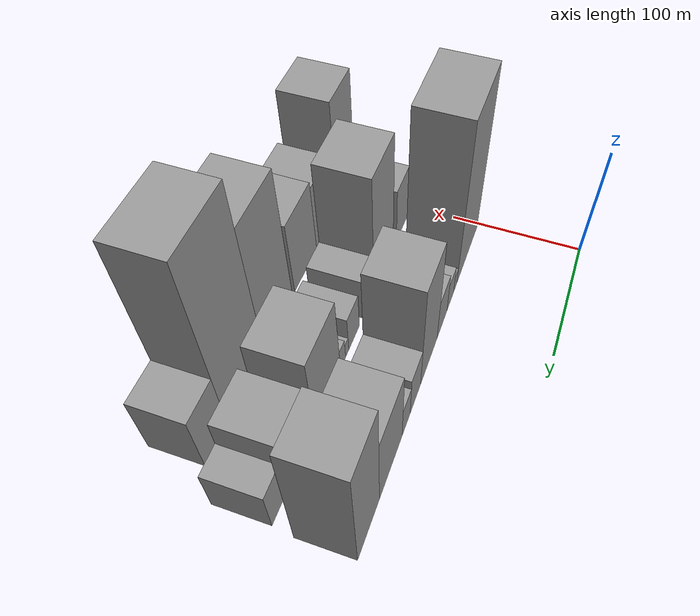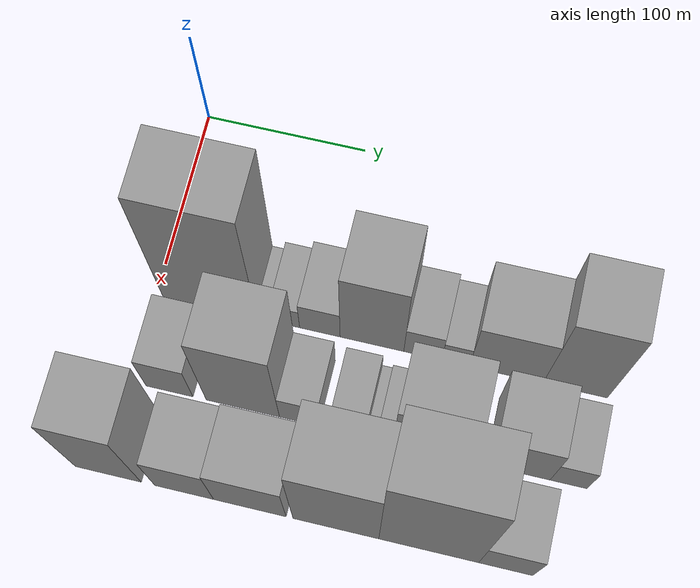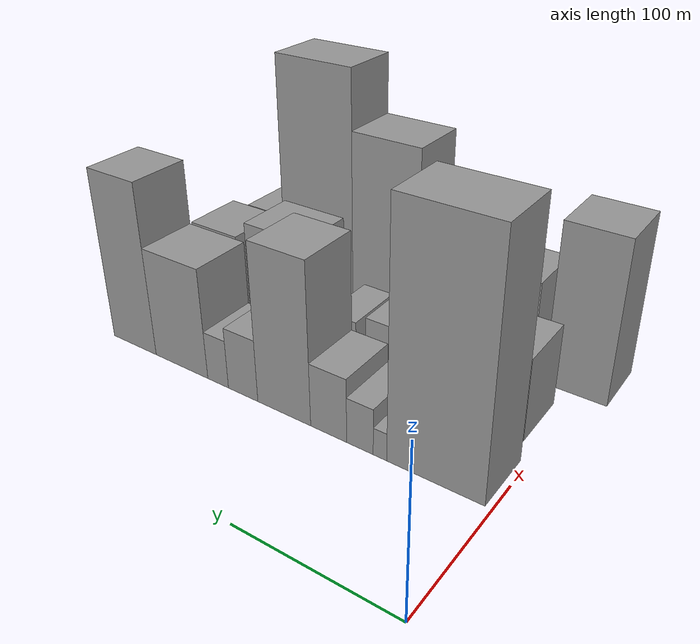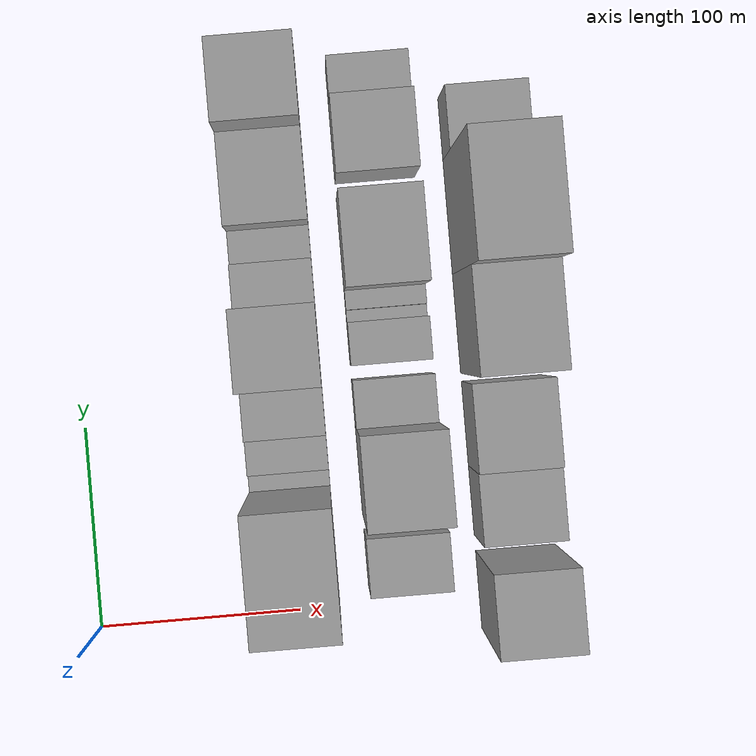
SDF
<sdf version="1.6">
 <world name="default">
  <model name="building_20">
   <static>1</static>
   <pose>100.0000 33.2290 0 0.000000 0.000000 0.000000</pose>
   <link name="link">
    <pose>0 0 78.00 0 0 0</pose>
    <collision name="collision"><geometry><box><size>40.0000 58.2275 156.0000</size></box></geometry></collision>
    <visual name="visual">
     <cast_shadows>0</cast_shadows>
     <geometry><box><size>40.0000 58.2275 156.0000</size></box></geometry>
     <material>
      <script>
       <uri>model://grey_wall/materials/scripts</uri>
       <uri>model://grey_wall/materials/textures</uri>
       <name>vrc/grey_wall</name>
      </script>
     </material>
    </visual>
   </link>
  </model>
  <model name="building_21">
   <static>1</static>
   <pose>100.0000 66.6488 0 0.000000 0.000000 0.000000</pose>
   <link name="link">
    <pose>0 0 9.00 0 0 0</pose>
    <collision name="collision"><geometry><box><size>40.0000 8.6122 18.0000</size></box></geometry></collision>
    <visual name="visual">
     <cast_shadows>0</cast_shadows>
     <geometry><box><size>40.0000 8.6122 18.0000</size></box></geometry>
     <material>
      <script>
       <uri>model://grey_wall/materials/scripts</uri>
       <uri>model://grey_wall/materials/textures</uri>
       <name>vrc/grey_wall</name>
      </script>
     </material>
    </visual>
   </link>
  </model>
  <model name="building_22">
   <static>1</static>
   <pose>100.0000 79.5975 0 0.000000 0.000000 0.000000</pose>
   <link name="link">
    <pose>0 0 15.00 0 0 0</pose>
    <collision name="collision"><geometry><box><size>40.0000 17.2851 30.0000</size></box></geometry></collision>
    <visual name="visual">
     <cast_shadows>0</cast_shadows>
     <geometry><box><size>40.0000 17.2851 30.0000</size></box></geometry>
     <material>
      <script>
       <uri>model://grey_wall/materials/scripts</uri>
       <uri>model://grey_wall/materials/textures</uri>
       <name>vrc/grey_wall</name>
      </script>
     </material>
    </visual>
   </link>
  </model>
  <model name="building_23">
   <static>1</static>
   <pose>100.0000 100.5448 0 0.000000 0.000000 0.000000</pose>
   <link name="link">
    <pose>0 0 21.00 0 0 0</pose>
    <collision name="collision"><geometry><box><size>40.0000 24.6096 42.0000</size></box></geometry></collision>
    <visual name="visual">
     <cast_shadows>0</cast_shadows>
     <geometry><box><size>40.0000 24.6096 42.0000</size></box></geometry>
     <material>
      <script>
       <uri>model://grey_wall/materials/scripts</uri>
       <uri>model://grey_wall/materials/textures</uri>
       <name>vrc/grey_wall</name>
      </script>
     </material>
    </visual>
   </link>
  </model>
  <model name="building_24">
   <static>1</static>
   <pose>100.0000 132.1193 0 0.000000 0.000000 0.000000</pose>
   <link name="link">
    <pose>0 0 52.50 0 0 0</pose>
    <collision name="collision"><geometry><box><size>40.0000 38.5394 105.0000</size></box></geometry></collision>
    <visual name="visual">
     <cast_shadows>0</cast_shadows>
     <geometry><box><size>40.0000 38.5394 105.0000</size></box></geometry>
     <material>
      <script>
       <uri>model://grey_wall/materials/scripts</uri>
       <uri>model://grey_wall/materials/textures</uri>
       <name>vrc/grey_wall</name>
      </script>
     </material>
    </visual>
   </link>
  </model>
  <model name="building_25">
   <static>1</static>
   <pose>100.0000 162.7643 0 0.000000 0.000000 0.000000</pose>
   <link name="link">
    <pose>0 0 21.00 0 0 0</pose>
    <collision name="collision"><geometry><box><size>40.0000 22.7505 42.0000</size></box></geometry></collision>
    <visual name="visual">
     <cast_shadows>0</cast_shadows>
     <geometry><box><size>40.0000 22.7505 42.0000</size></box></geometry>
     <material>
      <script>
       <uri>model://grey_wall/materials/scripts</uri>
       <uri>model://grey_wall/materials/textures</uri>
       <name>vrc/grey_wall</name>
      </script>
     </material>
    </visual>
   </link>
  </model>
  <model name="building_26">
   <static>1</static>
   <pose>100.0000 182.4364 0 0.000000 0.000000 0.000000</pose>
   <link name="link">
    <pose>0 0 16.50 0 0 0</pose>
    <collision name="collision"><geometry><box><size>40.0000 16.5937 33.0000</size></box></geometry></collision>
    <visual name="visual">
     <cast_shadows>0</cast_shadows>
     <geometry><box><size>40.0000 16.5937 33.0000</size></box></geometry>
     <material>
      <script>
       <uri>model://grey_wall/materials/scripts</uri>
       <uri>model://grey_wall/materials/textures</uri>
       <name>vrc/grey_wall</name>
      </script>
     </material>
    </visual>
   </link>
  </model>
  <model name="building_27">
   <static>1</static>
   <pose>100.0000 212.7019 0 0.000000 0.000000 0.000000</pose>
   <link name="link">
    <pose>0 0 37.50 0 0 0</pose>
    <collision name="collision"><geometry><box><size>40.0000 43.9373 75.0000</size></box></geometry></collision>
    <visual name="visual">
     <cast_shadows>0</cast_shadows>
     <geometry><box><size>40.0000 43.9373 75.0000</size></box></geometry>
     <material>
      <script>
       <uri>model://grey_wall/materials/scripts</uri>
       <uri>model://grey_wall/materials/textures</uri>
       <name>vrc/grey_wall</name>
      </script>
     </material>
    </visual>
   </link>
  </model>
  <model name="building_28">
   <static>1</static>
   <pose>100.0000 253.8108 0 0.000000 0.000000 0.000000</pose>
   <link name="link">
    <pose>0 0 58.50 0 0 0</pose>
    <collision name="collision"><geometry><box><size>40.0000 38.2804 117.0000</size></box></geometry></collision>
    <visual name="visual">
     <cast_shadows>0</cast_shadows>
     <geometry><box><size>40.0000 38.2804 117.0000</size></box></geometry>
     <material>
      <script>
       <uri>model://grey_wall/materials/scripts</uri>
       <uri>model://grey_wall/materials/textures</uri>
       <name>vrc/grey_wall</name>
      </script>
     </material>
    </visual>
   </link>
  </model>
  <model name="building_52">
   <static>1</static>
   <pose>155.0000 23.7741 0 0.000000 0.000000 0.000000</pose>
   <link name="link">
    <pose>0 0 27.00 0 0 0</pose>
    <collision name="collision"><geometry><box><size>40.0000 28.3925 54.0000</size></box></geometry></collision>
    <visual name="visual">
     <cast_shadows>0</cast_shadows>
     <geometry><box><size>40.0000 28.3925 54.0000</size></box></geometry>
     <material>
      <script>
       <uri>model://grey_wall/materials/scripts</uri>
       <uri>model://grey_wall/materials/textures</uri>
       <name>vrc/grey_wall</name>
      </script>
     </material>
    </visual>
   </link>
  </model>
  <model name="building_53">
   <static>1</static>
   <pose>155.0000 67.9589 0 0.000000 0.000000 0.000000</pose>
   <link name="link">
    <pose>0 0 58.50 0 0 0</pose>
    <collision name="collision"><geometry><box><size>40.0000 43.9771 117.0000</size></box></geometry></collision>
    <visual name="visual">
     <cast_shadows>0</cast_shadows>
     <geometry><box><size>40.0000 43.9771 117.0000</size></box></geometry>
     <material>
      <script>
       <uri>model://grey_wall/materials/scripts</uri>
       <uri>model://grey_wall/materials/textures</uri>
       <name>vrc/grey_wall</name>
      </script>
     </material>
    </visual>
   </link>
  </model>
  <model name="building_54">
   <static>1</static>
   <pose>155.0000 101.7364 0 0.000000 0.000000 0.000000</pose>
   <link name="link">
    <pose>0 0 21.00 0 0 0</pose>
    <collision name="collision"><geometry><box><size>40.0000 23.5777 42.0000</size></box></geometry></collision>
    <visual name="visual">
     <cast_shadows>0</cast_shadows>
     <geometry><box><size>40.0000 23.5777 42.0000</size></box></geometry>
     <material>
      <script>
       <uri>model://grey_wall/materials/scripts</uri>
       <uri>model://grey_wall/materials/textures</uri>
       <name>vrc/grey_wall</name>
      </script>
     </material>
    </visual>
   </link>
  </model>
  <model name="building_55">
   <static>1</static>
   <pose>155.0000 131.0932 0 0.000000 0.000000 0.000000</pose>
   <link name="link">
    <pose>0 0 18.00 0 0 0</pose>
    <collision name="collision"><geometry><box><size>40.0000 21.1361 36.0000</size></box></geometry></collision>
    <visual name="visual">
     <cast_shadows>0</cast_shadows>
     <geometry><box><size>40.0000 21.1361 36.0000</size></box></geometry>
     <material>
      <script>
       <uri>model://grey_wall/materials/scripts</uri>
       <uri>model://grey_wall/materials/textures</uri>
       <name>vrc/grey_wall</name>
      </script>
     </material>
    </visual>
   </link>
  </model>
  <model name="building_56">
   <static>1</static>
   <pose>155.0000 144.7560 0 0.000000 0.000000 0.000000</pose>
   <link name="link">
    <pose>0 0 7.50 0 0 0</pose>
    <collision name="collision"><geometry><box><size>40.0000 6.1895 15.0000</size></box></geometry></collision>
    <visual name="visual">
     <cast_shadows>0</cast_shadows>
     <geometry><box><size>40.0000 6.1895 15.0000</size></box></geometry>
     <material>
      <script>
       <uri>model://grey_wall/materials/scripts</uri>
       <uri>model://grey_wall/materials/textures</uri>
       <name>vrc/grey_wall</name>
      </script>
     </material>
    </visual>
   </link>
  </model>
  <model name="building_57">
   <static>1</static>
   <pose>155.0000 152.7059 0 0.000000 0.000000 0.000000</pose>
   <link name="link">
    <pose>0 0 10.50 0 0 0</pose>
    <collision name="collision"><geometry><box><size>40.0000 9.7101 21.0000</size></box></geometry></collision>
    <visual name="visual">
     <cast_shadows>0</cast_shadows>
     <geometry><box><size>40.0000 9.7101 21.0000</size></box></geometry>
     <material>
      <script>
       <uri>model://grey_wall/materials/scripts</uri>
       <uri>model://grey_wall/materials/textures</uri>
       <name>vrc/grey_wall</name>
      </script>
     </material>
    </visual>
   </link>
  </model>
  <model name="building_58">
   <static>1</static>
   <pose>155.0000 180.6804 0 0.000000 0.000000 0.000000</pose>
   <link name="link">
    <pose>0 0 39.00 0 0 0</pose>
    <collision name="collision"><geometry><box><size>40.0000 46.2390 78.0000</size></box></geometry></collision>
    <visual name="visual">
     <cast_shadows>0</cast_shadows>
     <geometry><box><size>40.0000 46.2390 78.0000</size></box></geometry>
     <material>
      <script>
       <uri>model://grey_wall/materials/scripts</uri>
       <uri>model://grey_wall/materials/textures</uri>
       <name>vrc/grey_wall</name>
      </script>
     </material>
    </visual>
   </link>
  </model>
  <model name="building_59">
   <static>1</static>
   <pose>155.0000 230.5927 0 0.000000 0.000000 0.000000</pose>
   <link name="link">
    <pose>0 0 33.00 0 0 0</pose>
    <collision name="collision"><geometry><box><size>40.0000 37.5855 66.0000</size></box></geometry></collision>
    <visual name="visual">
     <cast_shadows>0</cast_shadows>
     <geometry><box><size>40.0000 37.5855 66.0000</size></box></geometry>
     <material>
      <script>
       <uri>model://grey_wall/materials/scripts</uri>
       <uri>model://grey_wall/materials/textures</uri>
       <name>vrc/grey_wall</name>
      </script>
     </material>
    </visual>
   </link>
  </model>
  <model name="building_60">
   <static>1</static>
   <pose>155.0000 260.0713 0 0.000000 0.000000 0.000000</pose>
   <link name="link">
    <pose>0 0 21.00 0 0 0</pose>
    <collision name="collision"><geometry><box><size>40.0000 21.3718 42.0000</size></box></geometry></collision>
    <visual name="visual">
     <cast_shadows>0</cast_shadows>
     <geometry><box><size>40.0000 21.3718 42.0000</size></box></geometry>
     <material>
      <script>
       <uri>model://grey_wall/materials/scripts</uri>
       <uri>model://grey_wall/materials/textures</uri>
       <name>vrc/grey_wall</name>
      </script>
     </material>
    </visual>
   </link>
  </model>
  <model name="building_82">
   <static>1</static>
   <pose>210.0000 2.9194 0 0.000000 0.000000 0.000000</pose>
   <link name="link">
    <pose>0 0 54.00 0 0 0</pose>
    <collision name="collision"><geometry><box><size>40.0000 39.2048 108.0000</size></box></geometry></collision>
    <visual name="visual">
     <cast_shadows>0</cast_shadows>
     <geometry><box><size>40.0000 39.2048 108.0000</size></box></geometry>
     <material>
      <script>
       <uri>model://grey_wall/materials/scripts</uri>
       <uri>model://grey_wall/materials/textures</uri>
       <name>vrc/grey_wall</name>
      </script>
     </material>
    </visual>
   </link>
  </model>
  <model name="building_83">
   <static>1</static>
   <pose>210.0000 47.9344 0 0.000000 0.000000 0.000000</pose>
   <link name="link">
    <pose>0 0 33.00 0 0 0</pose>
    <collision name="collision"><geometry><box><size>40.0000 34.8252 66.0000</size></box></geometry></collision>
    <visual name="visual">
     <cast_shadows>0</cast_shadows>
     <geometry><box><size>40.0000 34.8252 66.0000</size></box></geometry>
     <material>
      <script>
       <uri>model://grey_wall/materials/scripts</uri>
       <uri>model://grey_wall/materials/textures</uri>
       <name>vrc/grey_wall</name>
      </script>
     </material>
    </visual>
   </link>
  </model>
  <model name="building_84">
   <static>1</static>
   <pose>210.0000 86.5903 0 0.000000 0.000000 0.000000</pose>
   <link name="link">
    <pose>0 0 36.00 0 0 0</pose>
    <collision name="collision"><geometry><box><size>40.0000 42.4867 72.0000</size></box></geometry></collision>
    <visual name="visual">
     <cast_shadows>0</cast_shadows>
     <geometry><box><size>40.0000 42.4867 72.0000</size></box></geometry>
     <material>
      <script>
       <uri>model://grey_wall/materials/scripts</uri>
       <uri>model://grey_wall/materials/textures</uri>
       <name>vrc/grey_wall</name>
      </script>
     </material>
    </visual>
   </link>
  </model>
  <model name="building_85">
   <static>1</static>
   <pose>210.0000 136.7199 0 0.000000 0.000000 0.000000</pose>
   <link name="link">
    <pose>0 0 64.50 0 0 0</pose>
    <collision name="collision"><geometry><box><size>40.0000 49.7726 129.0000</size></box></geometry></collision>
    <visual name="visual">
     <cast_shadows>0</cast_shadows>
     <geometry><box><size>40.0000 49.7726 129.0000</size></box></geometry>
     <material>
      <script>
       <uri>model://grey_wall/materials/scripts</uri>
       <uri>model://grey_wall/materials/textures</uri>
       <name>vrc/grey_wall</name>
      </script>
     </material>
    </visual>
   </link>
  </model>
  <model name="building_86">
   <static>1</static>
   <pose>210.0000 190.3500 0 0.000000 0.000000 0.000000</pose>
   <link name="link">
    <pose>0 0 84.00 0 0 0</pose>
    <collision name="collision"><geometry><box><size>40.0000 57.4876 168.0000</size></box></geometry></collision>
    <visual name="visual">
     <cast_shadows>0</cast_shadows>
     <geometry><box><size>40.0000 57.4876 168.0000</size></box></geometry>
     <material>
      <script>
       <uri>model://grey_wall/materials/scripts</uri>
       <uri>model://grey_wall/materials/textures</uri>
       <name>vrc/grey_wall</name>
      </script>
     </material>
    </visual>
   </link>
  </model>
  <model name="building_87">
   <static>1</static>
   <pose>210.0000 234.5464 0 0.000000 0.000000 0.000000</pose>
   <link name="link">
    <pose>0 0 28.50 0 0 0</pose>
    <collision name="collision"><geometry><box><size>40.0000 30.9052 57.0000</size></box></geometry></collision>
    <visual name="visual">
     <cast_shadows>0</cast_shadows>
     <geometry><box><size>40.0000 30.9052 57.0000</size></box></geometry>
     <material>
      <script>
       <uri>model://grey_wall/materials/scripts</uri>
       <uri>model://grey_wall/materials/textures</uri>
       <name>vrc/grey_wall</name>
      </script>
     </material>
    </visual>
   </link>
  </model>
 </world>
</sdf>
